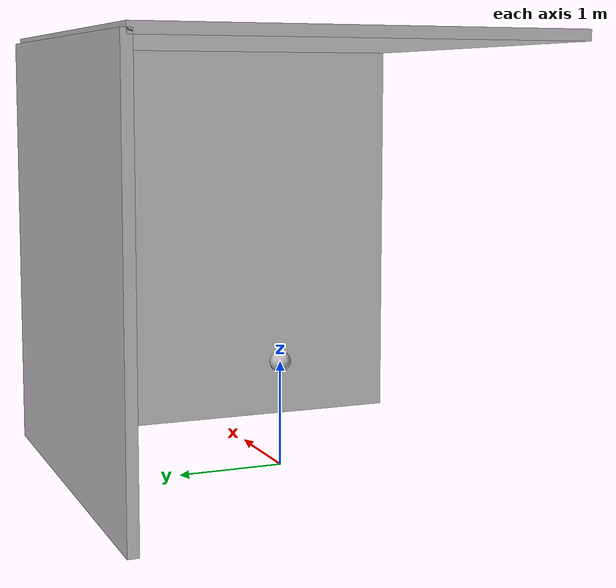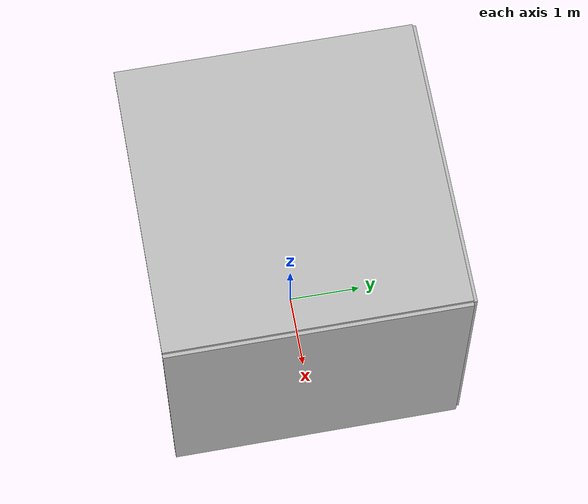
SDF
<?xml version="1.0" ?>
<sdf version="1.4">
    <!-- TBD add a few walls to capture where projector is projecting -->
    <model name="projector_model">
      <pose>0 0 0 0.0 0.0 0</pose>

      <link name="wall1">
        <pose>2 0 2 0.0 0.0 0</pose>
        <visual name="visual">
          <geometry>
            <box>
              <size>0.1 4 4</size>
            </box>
          </geometry>
          <material>
            <script>Gazebo/Grey</script>
          </material>
        </visual>
      </link>

      <link name="wall2">
        <pose>0 2 2 0.0 0.0 0</pose>
        <visual name="visual">
          <geometry>
            <box>
              <size>4 0.1 4</size>
            </box>
          </geometry>
          <material>
            <script>Gazebo/Grey</script>
          </material>
        </visual>
      </link>

      <link name="wall3">
        <pose>0 0 4 0.0 0.0 0</pose>
        <visual name="visual">
          <geometry>
            <box>
              <size>4 4 0.1</size>
            </box>
          </geometry>
          <material>
            <script>Gazebo/Grey</script>
          </material>
        </visual>
      </link>

      <link name="projector_link">
        <pose>0 0 1 0.0 0.77 0.0</pose>
        <collision name="collision">
          <geometry>
            <sphere>
              <radius>0.1</radius>
            </sphere>
          </geometry>
        </collision>
        <visual name="visual">
          <geometry>
            <sphere>
              <radius>0.1</radius>
            </sphere>
          </geometry>
          <material>
            <script>Gazebo/Grey</script>
          </material>
        </visual>
        <projector name="texture_projector">
          <pose>0 0 0 0 0.0 0</pose>
        <!-- set GAZEBO_RESOURCE_PATH to point to this (have it within media/materials/textures subdir  -->
        <texture>test_pattern.png</texture>
        <!-- this works because it is in /usr/share/gazebo-1.9/media/materials/textures/ -->
          <fov>0.959931088597</fov>
          <near_clip>0.1</near_clip>
          <far_clip>10</far_clip>
        </projector>
      </link>
      <static>true</static>
    </model>

</sdf>
